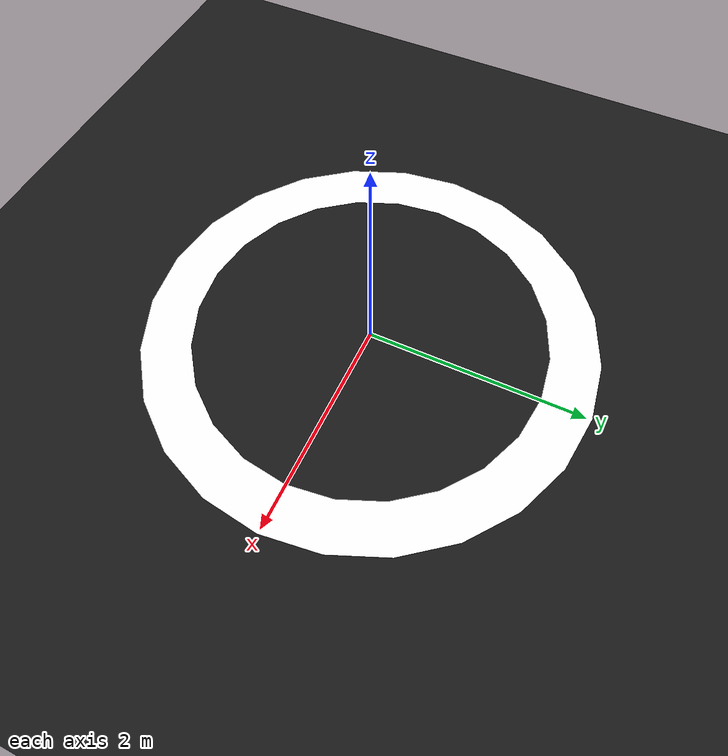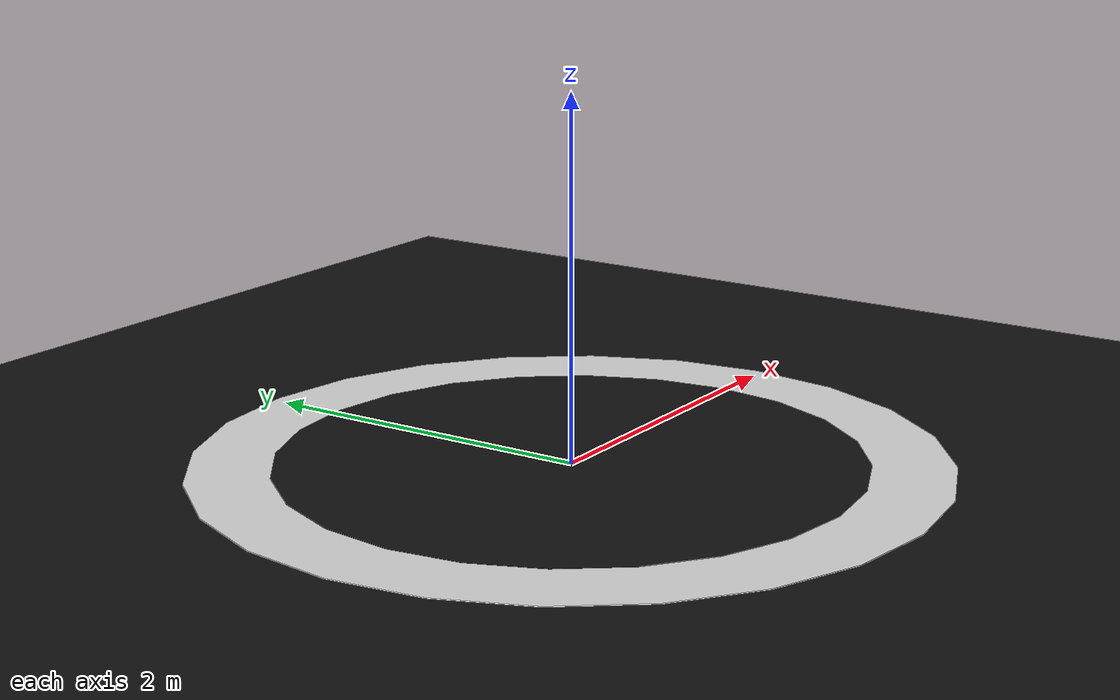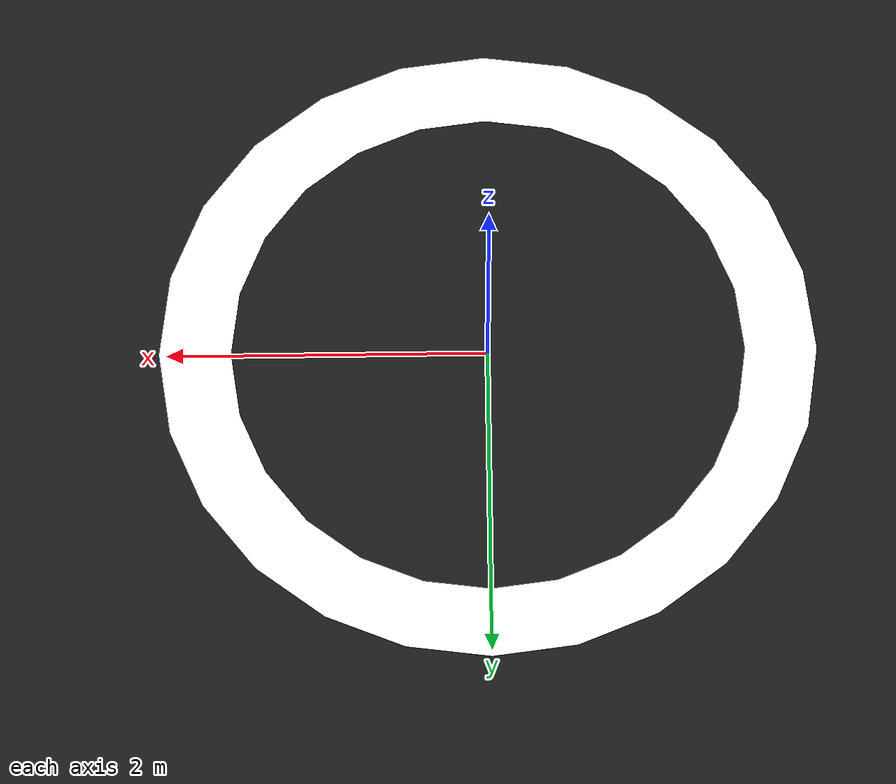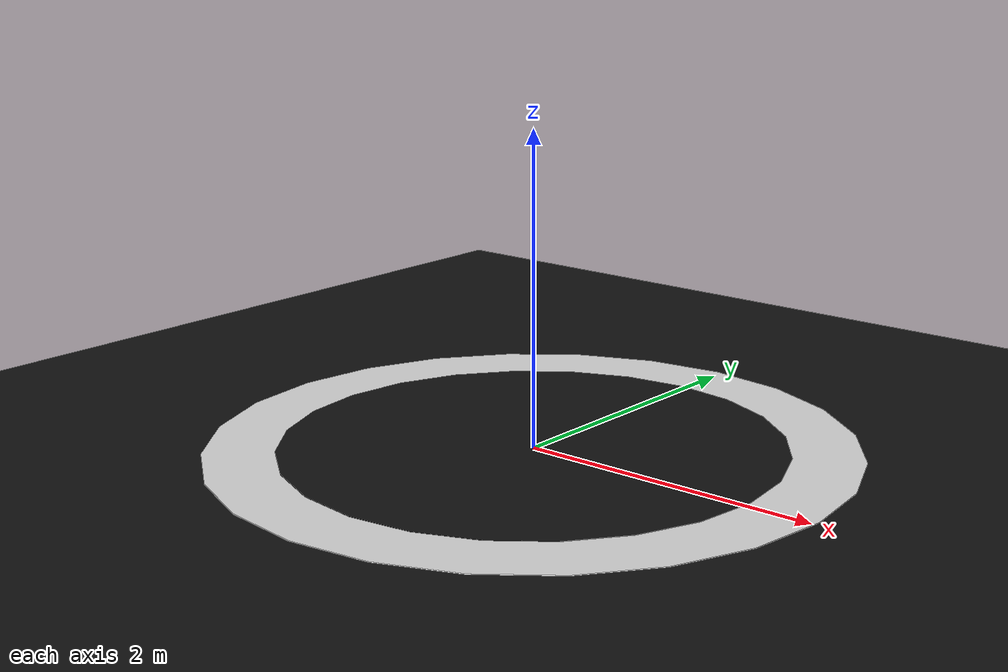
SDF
<?xml version="1.0" ?>
<sdf version="1.7">
<world name="duckietown_world">

  <!-- LUMIERE -->
  <light name="sun" type="directional">
    <direction>-0.5 0.5 -1</direction>
    <diffuse>1 1 1 1</diffuse>
  </light>

  <!-- SOL 5x5 -->
  <model name="ground">
    <static>true</static>
    <link name="link">
      <collision name="collision">
        <geometry>
          <plane><size>5 5</size></plane>
        </geometry>
      </collision>
      <visual name="visual">
        <geometry>
          <plane><size>5 5</size></plane>
        </geometry>
        <material>
          <ambient>0.1 0.1 0.1 1</ambient>
        </material>
      </visual>
    </link>
  </model>

  <!-- ROUTE OVALE (ELLIPSE) -->

  <!-- extérieur -->
  <model name="road_outer">
    <static>true</static>
    <link name="link">
      <visual name="visual">
        <geometry>
          <cylinder>
            <radius>2.0</radius>
            <length>0.01</length>
          </cylinder>
        </geometry>
        <material>
          <ambient>0.3 0.3 0.3 1</ambient>
        </material>
      </visual>
    </link>
    <pose>0 0 0.01 0 0 0</pose>
  </model>

  <!-- intérieur -->
  <model name="road_inner">
    <static>true</static>
    <link name="link">
      <visual name="visual">
        <geometry>
          <cylinder>
            <radius>1.6</radius>
            <length>0.02</length>
          </cylinder>
        </geometry>
        <material>
          <ambient>0.1 0.1 0.1 1</ambient>
        </material>
      </visual>
    </link>
    <pose>0 0 0.015 0 0 0</pose>
  </model>

  <!-- BORDURES BLANCHES -->

  <model name="border_outer">
    <static>true</static>
    <link name="link">
      <visual name="visual">
        <geometry>
          <cylinder>
            <radius>2.05</radius>
            <length>0.005</length>
          </cylinder>
        </geometry>
        <material>
          <ambient>1 1 1 1</ambient>
        </material>
      </visual>
    </link>
    <pose>0 0 0.02 0 0 0</pose>
  </model>

  <model name="border_inner">
    <static>true</static>
    <link name="link">
      <visual name="visual">
        <geometry>
          <cylinder>
            <radius>1.55</radius>
            <length>0.005</length>
          </cylinder>
        </geometry>
        <material>
          <ambient>1 1 1 1</ambient>
        </material>
      </visual>
    </link>
    <pose>0 0 0.02 0 0 0</pose>
  </model>

</world>
</sdf>
